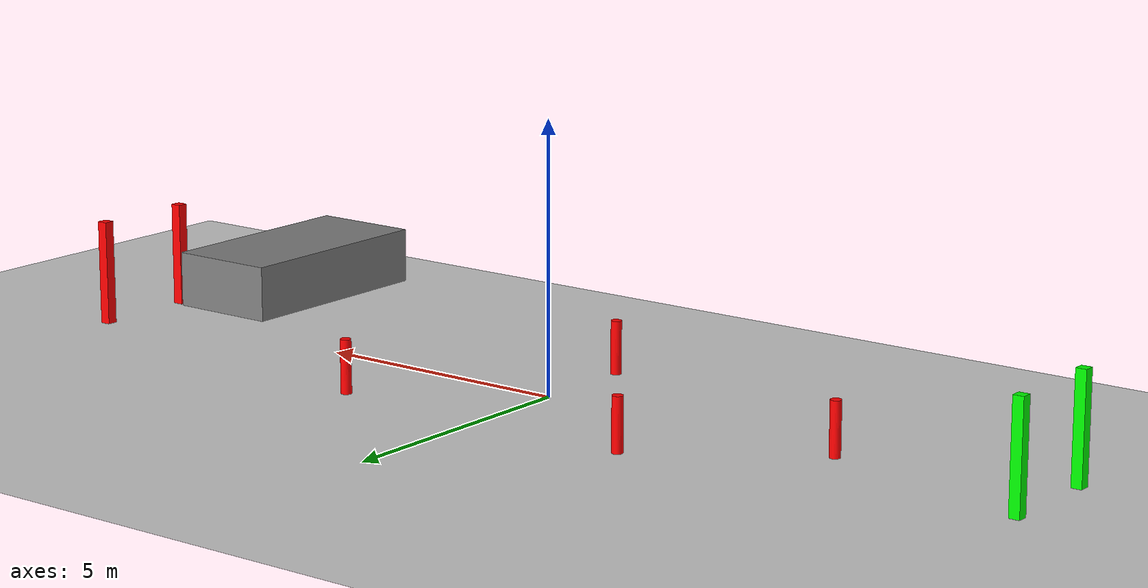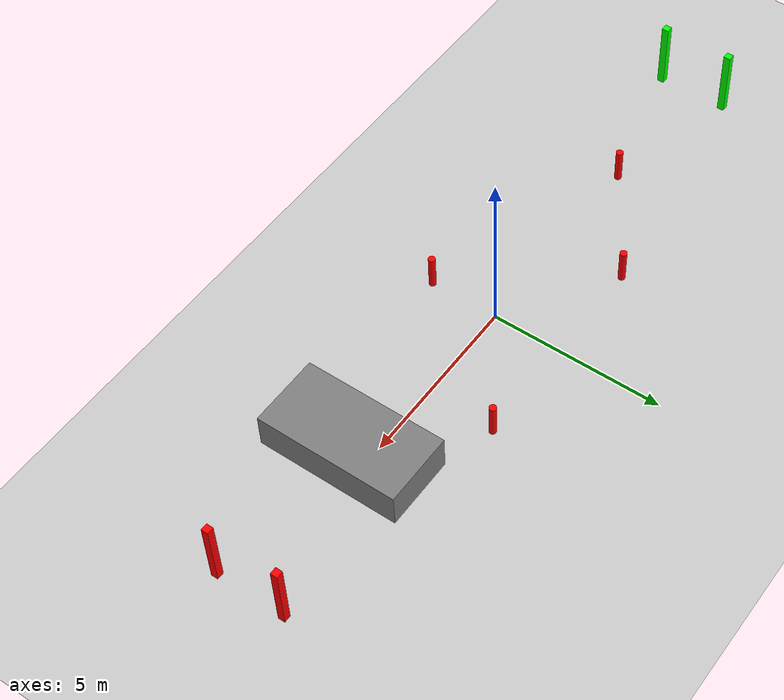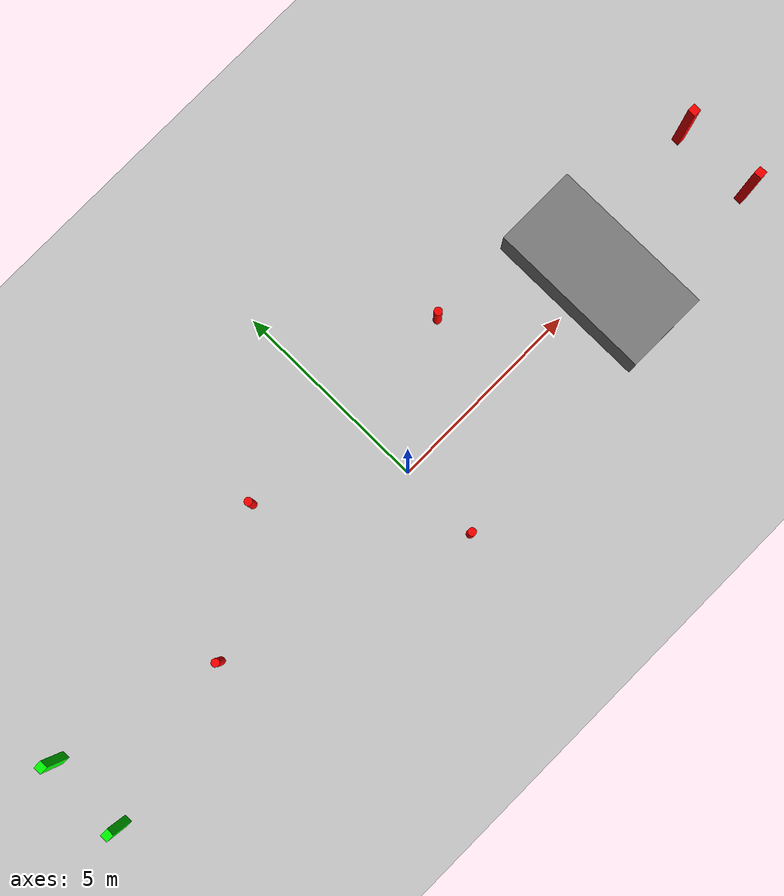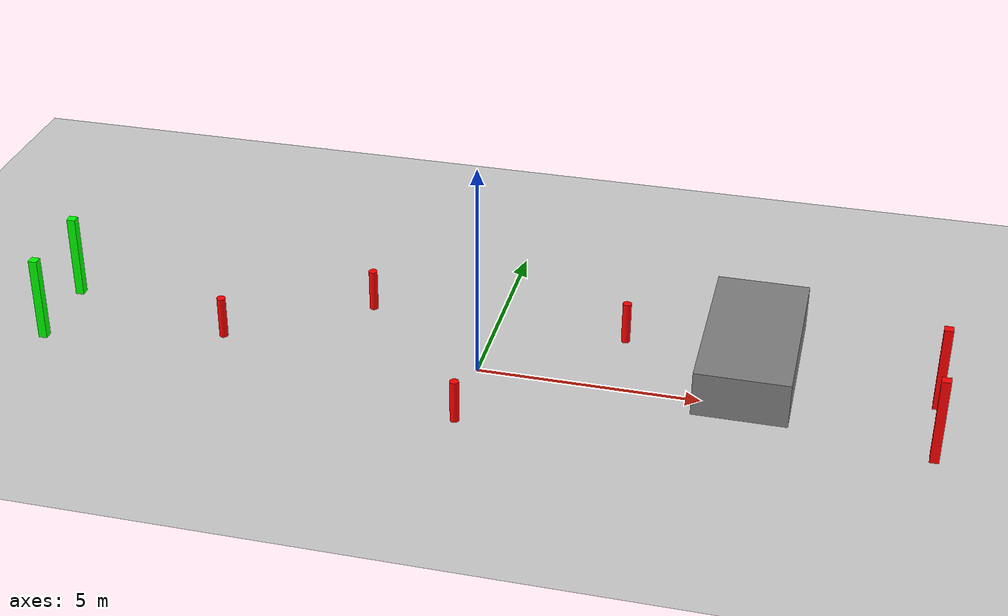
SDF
<?xml version="1.0" ?>
<sdf version="1.6">
  <world name="obstacle_course">
    <include>
      <uri>model://sun</uri>
    </include>
    <include>
      <uri>model://ground_plane</uri>
    </include>

    <!-- Start gate -->
    <model name="start_gate_left">
      <static>true</static>
      <pose>-10 -1 1 0 0 0</pose>
      <link name="link">
        <collision name="collision">
          <geometry>
            <box>
              <size>0.2 0.2 2</size>
            </box>
          </geometry>
        </collision>
        <visual name="visual">
          <geometry>
            <box>
              <size>0.2 0.2 2</size>
            </box>
          </geometry>
          <material>
            <ambient>0 1 0 1</ambient>
          </material>
        </visual>
      </link>
    </model>

    <model name="start_gate_right">
      <static>true</static>
      <pose>-10 1 1 0 0 0</pose>
      <link name="link">
        <collision name="collision">
          <geometry>
            <box>
              <size>0.2 0.2 2</size>
            </box>
          </geometry>
        </collision>
        <visual name="visual">
          <geometry>
            <box>
              <size>0.2 0.2 2</size>
            </box>
          </geometry>
          <material>
            <ambient>0 1 0 1</ambient>
          </material>
        </visual>
      </link>
    </model>

    <!-- Slalom poles -->
    <model name="pole1">
      <static>true</static>
      <pose>-6 0 0.5 0 0 0</pose>
      <link name="link">
        <collision name="collision">
          <geometry>
            <cylinder>
              <radius>0.1</radius>
              <length>1</length>
            </cylinder>
          </geometry>
        </collision>
        <visual name="visual">
          <geometry>
            <cylinder>
              <radius>0.1</radius>
              <length>1</length>
            </cylinder>
          </geometry>
          <material>
            <ambient>1 0 0 1</ambient>
          </material>
        </visual>
      </link>
    </model>

    <model name="pole2">
      <static>true</static>
      <pose>-3 2 0.5 0 0 0</pose>
      <link name="link">
        <collision name="collision">
          <geometry>
            <cylinder>
              <radius>0.1</radius>
              <length>1</length>
            </cylinder>
          </geometry>
        </collision>
        <visual name="visual">
          <geometry>
            <cylinder>
              <radius>0.1</radius>
              <length>1</length>
            </cylinder>
          </geometry>
          <material>
            <ambient>1 0 0 1</ambient>
          </material>
        </visual>
      </link>
    </model>

    <model name="pole3">
      <static>true</static>
      <pose>0 -2 0.5 0 0 0</pose>
      <link name="link">
        <collision name="collision">
          <geometry>
            <cylinder>
              <radius>0.1</radius>
              <length>1</length>
            </cylinder>
          </geometry>
        </collision>
        <visual name="visual">
          <geometry>
            <cylinder>
              <radius>0.1</radius>
              <length>1</length>
            </cylinder>
          </geometry>
          <material>
            <ambient>1 0 0 1</ambient>
          </material>
        </visual>
      </link>
    </model>

    <model name="pole4">
      <static>true</static>
      <pose>3 2 0.5 0 0 0</pose>
      <link name="link">
        <collision name="collision">
          <geometry>
            <cylinder>
              <radius>0.1</radius>
              <length>1</length>
            </cylinder>
          </geometry>
        </collision>
        <visual name="visual">
          <geometry>
            <cylinder>
              <radius>0.1</radius>
              <length>1</length>
            </cylinder>
          </geometry>
          <material>
            <ambient>1 0 0 1</ambient>
          </material>
        </visual>
      </link>
    </model>

    <!-- Tunnel obstacle -->
    <model name="tunnel_top">
      <static>true</static>
      <pose>6 0 1.5 0 0 0</pose>
      <link name="link">
        <collision name="collision">
          <geometry>
            <box>
              <size>2 4 1</size>
            </box>
          </geometry>
        </collision>
        <visual name="visual">
          <geometry>
            <box>
              <size>2 4 1</size>
            </box>
          </geometry>
          <material>
            <ambient>0.5 0.5 0.5 1</ambient>
          </material>
        </visual>
      </link>
    </model>

    <!-- Finish gate -->
    <model name="finish_gate_left">
      <static>true</static>
      <pose>10 -1 1 0 0 0</pose>
      <link name="link">
        <collision name="collision">
          <geometry>
            <box>
              <size>0.2 0.2 2</size>
            </box>
          </geometry>
        </collision>
        <visual name="visual">
          <geometry>
            <box>
              <size>0.2 0.2 2</size>
            </box>
          </geometry>
          <material>
            <ambient>1 0 0 1</ambient>
          </material>
        </visual>
      </link>
    </model>

    <model name="finish_gate_right">
      <static>true</static>
      <pose>10 1 1 0 0 0</pose>
      <link name="link">
        <collision name="collision">
          <geometry>
            <box>
              <size>0.2 0.2 2</size>
            </box>
          </geometry>
        </collision>
        <visual name="visual">
          <geometry>
            <box>
              <size>0.2 0.2 2</size>
            </box>
          </geometry>
          <material>
            <ambient>1 0 0 1</ambient>
          </material>
        </visual>
      </link>
    </model>

  </world>
</sdf>
